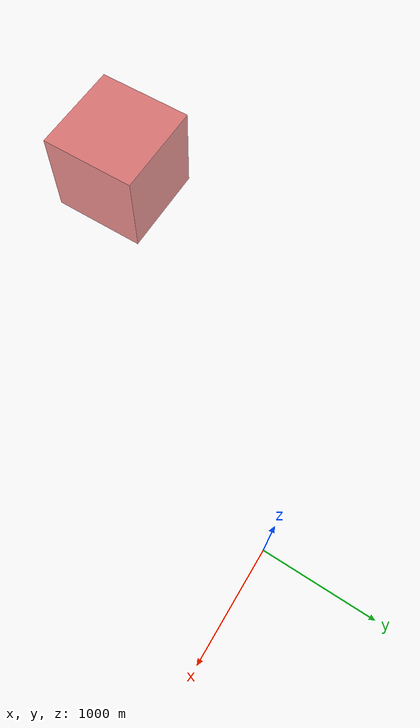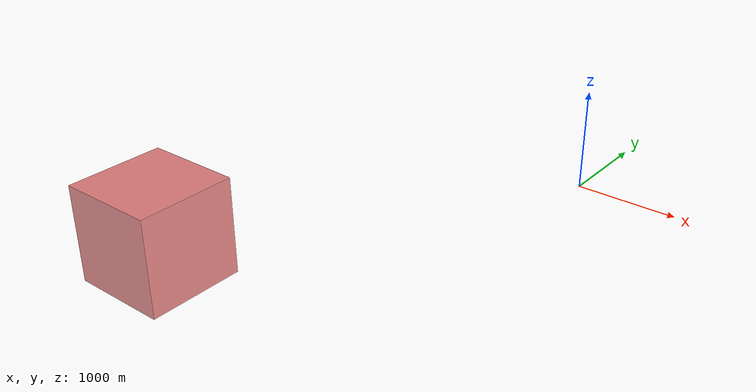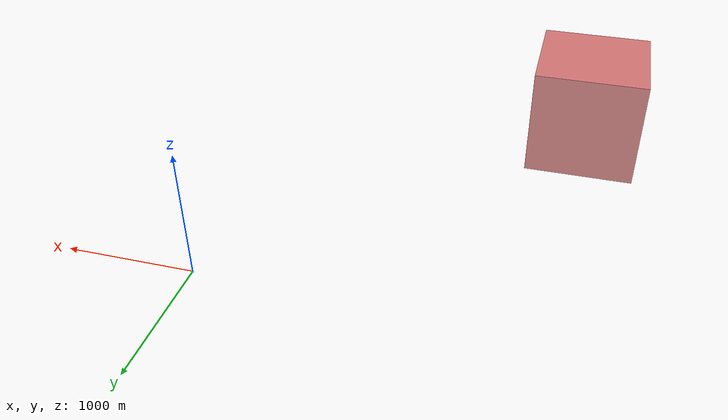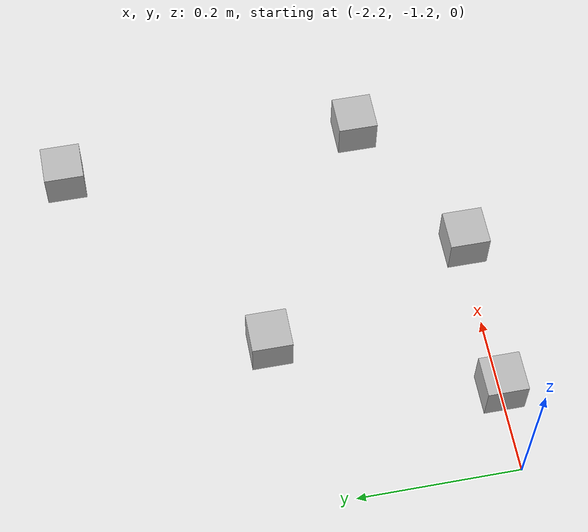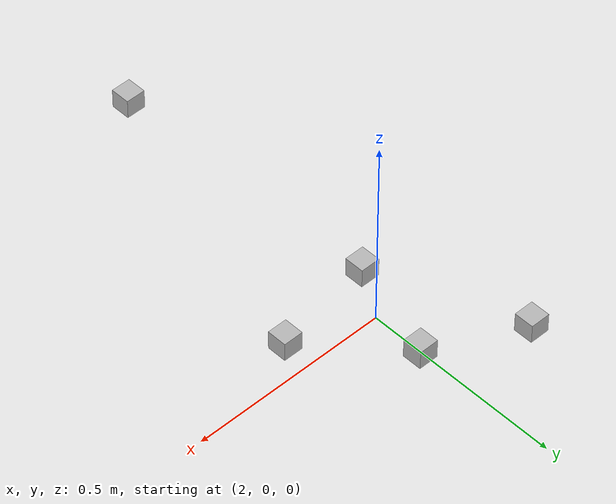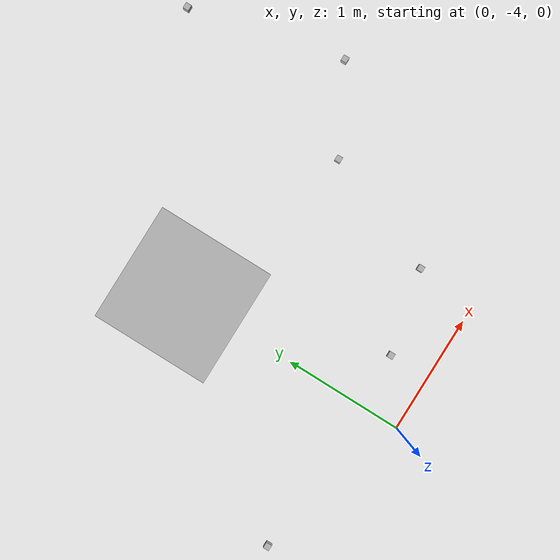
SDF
<sdf version="1.6">
 <world name="default">
  <light name="sun" type="directional">
   <pose>0 0 10 0 -0 0</pose>
   <diffuse>0.8 0.8 0.8 1</diffuse>
   <specular>0.1 0.1 0.1 1</specular>
   <attenuation>
    <range>1000</range>
    <constant>0.9</constant>
    <linear>0.01</linear>
    <quadratic>0.001</quadratic>
   </attenuation>
   <direction>-0.5 0.5 -1</direction>
  </light>
  <gravity>0 0 -9.8</gravity>
  <magnetic_field>6e-06 2.3e-05 -4.2e-05</magnetic_field>
  <atmosphere type="adiabatic"/>
  <physics name="default_physics" default="0" type="ode">
   <max_step_size>0.001</max_step_size>
   <real_time_factor>1</real_time_factor>
   <real_time_update_rate>1000</real_time_update_rate>
  </physics>
  <scene>
   <sky><clouds><speed>12</speed></clouds></sky>
   <ambient>0.4 0.4 0.4 1</ambient>
   <background>0.7 0.7 0.7 1</background>
   <shadows>1</shadows>
  </scene>
  <spherical_coordinates>
   <surface_model>EARTH_WGS84</surface_model>
   <latitude_deg>0</latitude_deg>
   <longitude_deg>0</longitude_deg>
   <elevation>0</elevation>
   <heading_deg>0</heading_deg>
  </spherical_coordinates>
  <model name="red_sky_filter">
   <link name="link_1">
    <visual name="visual1">
     <pose>-500 0 0 0 -0 1.5708</pose>
     <geometry><box><size>1000 0.1 1000</size></box></geometry>
     <material>
      <script><name>Gazebo/Red</name><uri>__default__</uri></script>
      <ambient>1 0 0 1</ambient>
      <diffuse>1 0 0 1</diffuse>
      <specular>1 0 0 1</specular>
      <emissive>1 0 0 1</emissive>
     </material>
     <transparency>0.4</transparency>
    </visual>
    <visual name="visual2">
     <pose>500 0 0 0 -0 1.5708</pose>
     <geometry><box><size>1000 0.1 1000</size></box></geometry>
     <material>
      <script><name>Gazebo/Red</name><uri>__default__</uri></script>
      <ambient>1 0 0 1</ambient>
      <diffuse>1 0 0 1</diffuse>
      <specular>1 0 0 1</specular>
      <emissive>1 0 0 1</emissive>
     </material>
     <transparency>0.4</transparency>
    </visual>
    <visual name="visual3">
     <pose>0 500 0 0 -0 0</pose>
     <geometry><box><size>1000 0.1 1000</size></box></geometry>
     <material>
      <script><name>Gazebo/Red</name><uri>__default__</uri></script>
      <ambient>1 0 0 1</ambient>
      <diffuse>1 0 0 1</diffuse>
      <specular>1 0 0 1</specular>
      <emissive>1 0 0 1</emissive>
     </material>
     <transparency>0.4</transparency>
    </visual>
    <visual name="visual4">
     <pose>0 -500 0 0 -0 0</pose>
     <geometry><box><size>1000 0.1 1000</size></box></geometry>
     <material>
      <script><name>Gazebo/Red</name><uri>__default__</uri></script>
      <ambient>1 0 0 1</ambient>
      <diffuse>1 0 0 1</diffuse>
      <specular>1 0 0 1</specular>
      <emissive>1 0 0 1</emissive>
     </material>
     <transparency>0.4</transparency>
    </visual>
    <visual name="visual5">
     <pose>0 0 500 0 -0 0</pose>
     <geometry><box><size>1000 1000 0.1</size></box></geometry>
     <material>
      <script><name>Gazebo/Red</name><uri>__default__</uri></script>
      <ambient>1 0 0 1</ambient>
      <diffuse>1 0 0 1</diffuse>
      <specular>1 0 0 1</specular>
      <emissive>1 0 0 1</emissive>
     </material>
     <transparency>0.4</transparency>
    </visual>
   </link>
   <static>1</static>
   <pose>-2602.21 -3194.55 0 0 -0 0</pose>
  </model>
  <model name="at0_51">
   <static>0</static>
   <link name="link">
    <inertial>
     <mass>0.01</mass>
     <inertia><ixx>4e-05</ixx><ixy>0</ixy><ixz>0</ixz><iyy>4e-05</iyy><iyz>0</iyz><izz>4e-05</izz></inertia>
    </inertial>
    <visual name="visual">
     <geometry><box><size>0.05 0.05 0.05</size></box></geometry>
     <material>
      <script>
       <uri>model://at0/materials/scripts</uri>
       <uri>model://at0/materials/textures</uri>
       <name>at0/Diffuse</name>
      </script>
     </material>
    </visual>
    <collision name="collision">
     <geometry><box><size>0.05 0.05 0.05</size></box></geometry>
     <surface><friction><ode><mu>0.8</mu><mu2>0.7</mu2></ode></friction></surface>
    </collision>
   </link>
   <pose>-4.16222 -5.34635 0.025 0 -0 0</pose>
  </model>
  <model name="at0_52">
   <static>0</static>
   <link name="link">
    <inertial>
     <mass>0.01</mass>
     <inertia><ixx>4e-05</ixx><ixy>0</ixy><ixz>0</ixz><iyy>4e-05</iyy><iyz>0</iyz><izz>4e-05</izz></inertia>
    </inertial>
    <visual name="visual">
     <geometry><box><size>0.05 0.05 0.05</size></box></geometry>
     <material>
      <script>
       <uri>model://at0/materials/scripts</uri>
       <uri>model://at0/materials/textures</uri>
       <name>at0/Diffuse</name>
      </script>
     </material>
    </visual>
    <collision name="collision">
     <geometry><box><size>0.05 0.05 0.05</size></box></geometry>
     <surface><friction><ode><mu>0.8</mu><mu2>0.7</mu2></ode></friction></surface>
    </collision>
   </link>
   <pose>-4.0634 -5.34856 0.025 0 -0 0</pose>
  </model>
  <model name="at0_53">
   <static>0</static>
   <link name="link">
    <inertial>
     <mass>0.01</mass>
     <inertia><ixx>4e-05</ixx><ixy>0</ixy><ixz>0</ixz><iyy>4e-05</iyy><iyz>0</iyz><izz>4e-05</izz></inertia>
    </inertial>
    <visual name="visual">
     <geometry><box><size>0.05 0.05 0.05</size></box></geometry>
     <material>
      <script>
       <uri>model://at0/materials/scripts</uri>
       <uri>model://at0/materials/textures</uri>
       <name>at0/Diffuse</name>
      </script>
     </material>
    </visual>
    <collision name="collision">
     <geometry><box><size>0.05 0.05 0.05</size></box></geometry>
     <surface><friction><ode><mu>0.8</mu><mu2>0.7</mu2></ode></friction></surface>
    </collision>
   </link>
   <pose>-4.16454 -5.45616 0.025 0 -0 0</pose>
  </model>
  <model name="at0_54">
   <static>0</static>
   <link name="link">
    <inertial>
     <mass>0.01</mass>
     <inertia><ixx>4e-05</ixx><ixy>0</ixy><ixz>0</ixz><iyy>4e-05</iyy><iyz>0</iyz><izz>4e-05</izz></inertia>
    </inertial>
    <visual name="visual">
     <geometry><box><size>0.05 0.05 0.05</size></box></geometry>
     <material>
      <script>
       <uri>model://at0/materials/scripts</uri>
       <uri>model://at0/materials/textures</uri>
       <name>at0/Diffuse</name>
      </script>
     </material>
    </visual>
    <collision name="collision">
     <geometry><box><size>0.05 0.05 0.05</size></box></geometry>
     <surface><friction><ode><mu>0.8</mu><mu2>0.7</mu2></ode></friction></surface>
    </collision>
   </link>
   <pose>-4.07058 -5.45552 0.025 0 -0 0</pose>
  </model>
  <model name="at0_66">
   <static>0</static>
   <link name="link">
    <inertial>
     <mass>0.01</mass>
     <inertia><ixx>4e-05</ixx><ixy>0</ixy><ixz>0</ixz><iyy>4e-05</iyy><iyz>0</iyz><izz>4e-05</izz></inertia>
    </inertial>
    <visual name="visual">
     <geometry><box><size>0.05 0.05 0.05</size></box></geometry>
     <material>
      <script>
       <uri>model://at0/materials/scripts</uri>
       <uri>model://at0/materials/textures</uri>
       <name>at0/Diffuse</name>
      </script>
     </material>
    </visual>
    <collision name="collision">
     <geometry><box><size>0.05 0.05 0.05</size></box></geometry>
     <surface><friction><ode><mu>0.8</mu><mu2>0.7</mu2></ode></friction></surface>
    </collision>
   </link>
   <pose>2.19747 -0.068983 0.025 0 -0 0</pose>
  </model>
  <model name="at0_67">
   <static>0</static>
   <link name="link">
    <inertial>
     <mass>0.01</mass>
     <inertia><ixx>4e-05</ixx><ixy>0</ixy><ixz>0</ixz><iyy>4e-05</iyy><iyz>0</iyz><izz>4e-05</izz></inertia>
    </inertial>
    <visual name="visual">
     <geometry><box><size>0.05 0.05 0.05</size></box></geometry>
     <material>
      <script>
       <uri>model://at0/materials/scripts</uri>
       <uri>model://at0/materials/textures</uri>
       <name>at0/Diffuse</name>
      </script>
     </material>
    </visual>
    <collision name="collision">
     <geometry><box><size>0.05 0.05 0.05</size></box></geometry>
     <surface><friction><ode><mu>0.8</mu><mu2>0.7</mu2></ode></friction></surface>
    </collision>
   </link>
   <pose>1.95407 -0.83089 0.025 0 -0 0</pose>
  </model>
  <model name="at0_68">
   <static>0</static>
   <link name="link">
    <inertial>
     <mass>0.01</mass>
     <inertia><ixx>4e-05</ixx><ixy>0</ixy><ixz>0</ixz><iyy>4e-05</iyy><iyz>0</iyz><izz>4e-05</izz></inertia>
    </inertial>
    <visual name="visual">
     <geometry><box><size>0.05 0.05 0.05</size></box></geometry>
     <material>
      <script>
       <uri>model://at0/materials/scripts</uri>
       <uri>model://at0/materials/textures</uri>
       <name>at0/Diffuse</name>
      </script>
     </material>
    </visual>
    <collision name="collision">
     <geometry><box><size>0.05 0.05 0.05</size></box></geometry>
     <surface><friction><ode><mu>0.8</mu><mu2>0.7</mu2></ode></friction></surface>
    </collision>
   </link>
   <pose>1.78831 0.249803 0.025 0 -0 0</pose>
  </model>
  <model name="at0_69">
   <static>0</static>
   <link name="link">
    <inertial>
     <mass>0.01</mass>
     <inertia><ixx>4e-05</ixx><ixy>0</ixy><ixz>0</ixz><iyy>4e-05</iyy><iyz>0</iyz><izz>4e-05</izz></inertia>
    </inertial>
    <visual name="visual">
     <geometry><box><size>0.05 0.05 0.05</size></box></geometry>
     <material>
      <script>
       <uri>model://at0/materials/scripts</uri>
       <uri>model://at0/materials/textures</uri>
       <name>at0/Diffuse</name>
      </script>
     </material>
    </visual>
    <collision name="collision">
     <geometry><box><size>0.05 0.05 0.05</size></box></geometry>
     <surface><friction><ode><mu>0.8</mu><mu2>0.7</mu2></ode></friction></surface>
    </collision>
   </link>
   <pose>1.93499 -0.108598 0.025 0 -0 0</pose>
  </model>
  <model name="at0_70">
   <static>0</static>
   <link name="link">
    <inertial>
     <mass>0.01</mass>
     <inertia><ixx>4e-05</ixx><ixy>0</ixy><ixz>0</ixz><iyy>4e-05</iyy><iyz>0</iyz><izz>4e-05</izz></inertia>
    </inertial>
    <visual name="visual">
     <geometry><box><size>0.05 0.05 0.05</size></box></geometry>
     <material>
      <script>
       <uri>model://at0/materials/scripts</uri>
       <uri>model://at0/materials/textures</uri>
       <name>at0/Diffuse</name>
      </script>
     </material>
    </visual>
    <collision name="collision">
     <geometry><box><size>0.05 0.05 0.05</size></box></geometry>
     <surface><friction><ode><mu>0.8</mu><mu2>0.7</mu2></ode></friction></surface>
    </collision>
   </link>
   <pose>2.00894 0.141349 0.025 0 -0 0</pose>
  </model>
  <model name="collection_disk">
   <static>1</static>
   <link name="link">
    <visual name="visual">
     <geometry><box><size>1.016 1.016 0.001</size></box></geometry>
     <material>
      <script>
       <uri>model://collection_disk/materials/scripts</uri>
       <uri>model://collection_disk/materials/textures</uri>
       <name>collection_disk/Diffuse</name>
      </script>
     </material>
    </visual>
   </link>
   <plugin name="score_sim" filename="libgazebo_plugins_score.so">
    <scoreTopic>/collectionZone/score</scoreTopic>
    <collectionZoneSquareSize>1.016</collectionZoneSquareSize>
    <updateRate>0.2</updateRate>
   </plugin>
   <pose>0 3 0 0 -0 0</pose>
  </model>
  <model name="collection_disk_0">
   <static>1</static>
   <link name="link">
    <visual name="visual">
     <geometry><box><size>1.016 1.016 0.001</size></box></geometry>
     <material>
      <script>
       <uri>model://collection_disk/materials/scripts</uri>
       <uri>model://collection_disk/materials/textures</uri>
       <name>collection_disk/Diffuse</name>
      </script>
     </material>
    </visual>
   </link>
   <plugin name="score_sim" filename="libgazebo_plugins_score.so">
    <scoreTopic>/collectionZone/score</scoreTopic>
    <collectionZoneSquareSize>1.016</collectionZoneSquareSize>
    <updateRate>0.2</updateRate>
   </plugin>
   <pose>0 -2 0 0 -0 0</pose>
  </model>
  <model name="at1_0">
   <static>0</static>
   <link name="link">
    <inertial>
     <mass>0.01</mass>
     <inertia><ixx>4e-05</ixx><ixy>0</ixy><ixz>0</ixz><iyy>4e-05</iyy><iyz>0</iyz><izz>4e-05</izz></inertia>
    </inertial>
    <visual name="visual">
     <geometry><box><size>0.05 0.05 0.05</size></box></geometry>
     <material>
      <script>
       <uri>model://at1/materials/scripts</uri>
       <uri>model://at1/materials/textures</uri>
       <name>at1/Diffuse</name>
      </script>
     </material>
    </visual>
    <collision name="collision">
     <geometry><box><size>0.05 0.05 0.05</size></box></geometry>
     <surface><friction><ode><mu>0.8</mu><mu2>0.7</mu2></ode></friction></surface>
    </collision>
   </link>
   <pose>-1.32628 -3.61978 0.025 0 -0 0</pose>
  </model>
  <model name="at1_2">
   <static>0</static>
   <link name="link">
    <inertial>
     <mass>0.01</mass>
     <inertia><ixx>4e-05</ixx><ixy>0</ixy><ixz>0</ixz><iyy>4e-05</iyy><iyz>0</iyz><izz>4e-05</izz></inertia>
    </inertial>
    <visual name="visual">
     <geometry><box><size>0.05 0.05 0.05</size></box></geometry>
     <material>
      <script>
       <uri>model://at1/materials/scripts</uri>
       <uri>model://at1/materials/textures</uri>
       <name>at1/Diffuse</name>
      </script>
     </material>
    </visual>
    <collision name="collision">
     <geometry><box><size>0.05 0.05 0.05</size></box></geometry>
     <surface><friction><ode><mu>0.8</mu><mu2>0.7</mu2></ode></friction></surface>
    </collision>
   </link>
   <pose>1.17562 -3.48714 0.025 0 -0 0</pose>
  </model>
  <model name="at1_3">
   <static>0</static>
   <link name="link">
    <inertial>
     <mass>0.01</mass>
     <inertia><ixx>4e-05</ixx><ixy>0</ixy><ixz>0</ixz><iyy>4e-05</iyy><iyz>0</iyz><izz>4e-05</izz></inertia>
    </inertial>
    <visual name="visual">
     <geometry><box><size>0.05 0.05 0.05</size></box></geometry>
     <material>
      <script>
       <uri>model://at1/materials/scripts</uri>
       <uri>model://at1/materials/textures</uri>
       <name>at1/Diffuse</name>
      </script>
     </material>
    </visual>
    <collision name="collision">
     <geometry><box><size>0.05 0.05 0.05</size></box></geometry>
     <surface><friction><ode><mu>0.8</mu><mu2>0.7</mu2></ode></friction></surface>
    </collision>
   </link>
   <pose>0.46882 -3.65096 0.025 0 -0 0</pose>
  </model>
  <model name="at1_5">
   <static>0</static>
   <link name="link">
    <inertial>
     <mass>0.01</mass>
     <inertia><ixx>4e-05</ixx><ixy>0</ixy><ixz>0</ixz><iyy>4e-05</iyy><iyz>0</iyz><izz>4e-05</izz></inertia>
    </inertial>
    <visual name="visual">
     <geometry><box><size>0.05 0.05 0.05</size></box></geometry>
     <material>
      <script>
       <uri>model://at1/materials/scripts</uri>
       <uri>model://at1/materials/textures</uri>
       <name>at1/Diffuse</name>
      </script>
     </material>
    </visual>
    <collision name="collision">
     <geometry><box><size>0.05 0.05 0.05</size></box></geometry>
     <surface><friction><ode><mu>0.8</mu><mu2>0.7</mu2></ode></friction></surface>
    </collision>
   </link>
   <pose>1.56574 -2.48026 0.025 0 -0 0</pose>
  </model>
  <model name="at1_6">
   <static>0</static>
   <link name="link">
    <inertial>
     <mass>0.01</mass>
     <inertia><ixx>4e-05</ixx><ixy>0</ixy><ixz>0</ixz><iyy>4e-05</iyy><iyz>0</iyz><izz>4e-05</izz></inertia>
    </inertial>
    <visual name="visual">
     <geometry><box><size>0.05 0.05 0.05</size></box></geometry>
     <material>
      <script>
       <uri>model://at1/materials/scripts</uri>
       <uri>model://at1/materials/textures</uri>
       <name>at1/Diffuse</name>
      </script>
     </material>
    </visual>
    <collision name="collision">
     <geometry><box><size>0.05 0.05 0.05</size></box></geometry>
     <surface><friction><ode><mu>0.8</mu><mu2>0.7</mu2></ode></friction></surface>
    </collision>
   </link>
   <pose>2.26119 -2.10657 0.025 0 -0 0</pose>
  </model>
  <model name="at1_9">
   <static>0</static>
   <link name="link">
    <inertial>
     <mass>0.01</mass>
     <inertia><ixx>4e-05</ixx><ixy>0</ixy><ixz>0</ixz><iyy>4e-05</iyy><iyz>0</iyz><izz>4e-05</izz></inertia>
    </inertial>
    <visual name="visual">
     <geometry><box><size>0.05 0.05 0.05</size></box></geometry>
     <material>
      <script>
       <uri>model://at1/materials/scripts</uri>
       <uri>model://at1/materials/textures</uri>
       <name>at1/Diffuse</name>
      </script>
     </material>
    </visual>
    <collision name="collision">
     <geometry><box><size>0.05 0.05 0.05</size></box></geometry>
     <surface><friction><ode><mu>0.8</mu><mu2>0.7</mu2></ode></friction></surface>
    </collision>
   </link>
   <pose>-1.98736 -0.935181 0.025 0 -0 0</pose>
  </model>
  <model name="at1_10">
   <static>0</static>
   <link name="link">
    <inertial>
     <mass>0.01</mass>
     <inertia><ixx>4e-05</ixx><ixy>0</ixy><ixz>0</ixz><iyy>4e-05</iyy><iyz>0</iyz><izz>4e-05</izz></inertia>
    </inertial>
    <visual name="visual">
     <geometry><box><size>0.05 0.05 0.05</size></box></geometry>
     <material>
      <script>
       <uri>model://at1/materials/scripts</uri>
       <uri>model://at1/materials/textures</uri>
       <name>at1/Diffuse</name>
      </script>
     </material>
    </visual>
    <collision name="collision">
     <geometry><box><size>0.05 0.05 0.05</size></box></geometry>
     <surface><friction><ode><mu>0.8</mu><mu2>0.7</mu2></ode></friction></surface>
    </collision>
   </link>
   <pose>-1.89112 -1.20265 0.025 0 -0 0</pose>
  </model>
  <model name="at1_11">
   <static>0</static>
   <link name="link">
    <inertial>
     <mass>0.01</mass>
     <inertia><ixx>4e-05</ixx><ixy>0</ixy><ixz>0</ixz><iyy>4e-05</iyy><iyz>0</iyz><izz>4e-05</izz></inertia>
    </inertial>
    <visual name="visual">
     <geometry><box><size>0.05 0.05 0.05</size></box></geometry>
     <material>
      <script>
       <uri>model://at1/materials/scripts</uri>
       <uri>model://at1/materials/textures</uri>
       <name>at1/Diffuse</name>
      </script>
     </material>
    </visual>
    <collision name="collision">
     <geometry><box><size>0.05 0.05 0.05</size></box></geometry>
     <surface><friction><ode><mu>0.8</mu><mu2>0.7</mu2></ode></friction></surface>
    </collision>
   </link>
   <pose>-1.69614 -1.10156 0.025 0 -0 0</pose>
  </model>
  <model name="at1_12">
   <static>0</static>
   <link name="link">
    <inertial>
     <mass>0.01</mass>
     <inertia><ixx>4e-05</ixx><ixy>0</ixy><ixz>0</ixz><iyy>4e-05</iyy><iyz>0</iyz><izz>4e-05</izz></inertia>
    </inertial>
    <visual name="visual">
     <geometry><box><size>0.05 0.05 0.05</size></box></geometry>
     <material>
      <script>
       <uri>model://at1/materials/scripts</uri>
       <uri>model://at1/materials/textures</uri>
       <name>at1/Diffuse</name>
      </script>
     </material>
    </visual>
    <collision name="collision">
     <geometry><box><size>0.05 0.05 0.05</size></box></geometry>
     <surface><friction><ode><mu>0.8</mu><mu2>0.7</mu2></ode></friction></surface>
    </collision>
   </link>
   <pose>-2.09585 -1.19848 0.025 0 -0 0</pose>
  </model>
  <model name="at1_13">
   <static>0</static>
   <link name="link">
    <inertial>
     <mass>0.01</mass>
     <inertia><ixx>4e-05</ixx><ixy>0</ixy><ixz>0</ixz><iyy>4e-05</iyy><iyz>0</iyz><izz>4e-05</izz></inertia>
    </inertial>
    <visual name="visual">
     <geometry><box><size>0.05 0.05 0.05</size></box></geometry>
     <material>
      <script>
       <uri>model://at1/materials/scripts</uri>
       <uri>model://at1/materials/textures</uri>
       <name>at1/Diffuse</name>
      </script>
     </material>
    </visual>
    <collision name="collision">
     <geometry><box><size>0.05 0.05 0.05</size></box></geometry>
     <surface><friction><ode><mu>0.8</mu><mu2>0.7</mu2></ode></friction></surface>
    </collision>
   </link>
   <pose>-1.7032 -0.718798 0.025 0 -0 0</pose>
  </model>
  <model name="mission_to_mars_ground_plane_0">
   <static>1</static>
   <link name="link">
    <collision name="collision">
     <geometry><plane><normal>0 0 1</normal><size>20 20</size></plane></geometry>
     <surface><friction><ode><mu>100</mu><mu2>50</mu2></ode></friction></surface>
    </collision>
    <visual name="visual">
     <cast_shadows>0</cast_shadows>
     <geometry><plane><normal>0 0 1</normal><size>20 20</size></plane></geometry>
     <material>
      <script>
       <uri>model://media/materials/scripts</uri>
       <uri>model://media/materials/textures</uri>
       <name>MissionToMarsGround/Image</name>
      </script>
     </material>
    </visual>
   </link>
   <pose>-0.014064 -0.053068 0 0 -0 0</pose>
  </model>
  <model name="swarm_rock">
   <pose>2.9003 8.03828 -0.195688 3.14155 0.001592 1.54453</pose>
   <static>1</static>
   <link name="link">
    <collision name="collision">
     <geometry><mesh><uri>model://swarm_rock/meshes/swarm_rock.dae</uri><scale>1 1 1</scale></mesh></geometry>
    </collision>
    <visual name="visual">
     <geometry><mesh><uri>model://swarm_rock/meshes/swarm_rock.dae</uri><scale>1 1 1</scale></mesh></geometry>
    </visual>
   </link>
  </model>
  <model name="swarm_rock_0">
   <pose>3.3848 7.42046 -0.792328 3.14056 0.001213 0.865907</pose>
   <static>1</static>
   <link name="link">
    <collision name="collision">
     <geometry><mesh><uri>model://swarm_rock/meshes/swarm_rock.dae</uri><scale>1 1 1</scale></mesh></geometry>
    </collision>
    <visual name="visual">
     <geometry><mesh><uri>model://swarm_rock/meshes/swarm_rock.dae</uri><scale>1 1 1</scale></mesh></geometry>
    </visual>
   </link>
  </model>
  <model name="swarm_rock_1">
   <pose>5.82878 6.02298 -0.412309 3.1405 0.001156 0.811984</pose>
   <static>1</static>
   <link name="link">
    <collision name="collision">
     <geometry><mesh><uri>model://swarm_rock/meshes/swarm_rock.dae</uri><scale>1 1 1</scale></mesh></geometry>
    </collision>
    <visual name="visual">
     <geometry><mesh><uri>model://swarm_rock/meshes/swarm_rock.dae</uri><scale>1 1 1</scale></mesh></geometry>
    </visual>
   </link>
  </model>
  <model name="swarm_rock_2">
   <pose>7.92801 6.14651 0 3.14 -0 0</pose>
   <static>1</static>
   <link name="link">
    <collision name="collision">
     <geometry><mesh><uri>model://swarm_rock/meshes/swarm_rock.dae</uri><scale>1 1 1</scale></mesh></geometry>
    </collision>
    <visual name="visual">
     <geometry><mesh><uri>model://swarm_rock/meshes/swarm_rock.dae</uri><scale>1 1 1</scale></mesh></geometry>
    </visual>
   </link>
  </model>
  <model name="swarm_rock_3">
   <pose>4.64286 8.05527 -0.429706 3.14148 0.001589 1.5014</pose>
   <static>1</static>
   <link name="link">
    <collision name="collision">
     <geometry><mesh><uri>model://swarm_rock/meshes/swarm_rock.dae</uri><scale>1 1 1</scale></mesh></geometry>
    </collision>
    <visual name="visual">
     <geometry><mesh><uri>model://swarm_rock/meshes/swarm_rock.dae</uri><scale>1 1 1</scale></mesh></geometry>
    </visual>
   </link>
  </model>
  <model name="swarm_rock_4">
   <pose>6.83655 6.63858 0.001149 3.14 -0 0</pose>
   <static>1</static>
   <link name="link">
    <collision name="collision">
     <geometry><mesh><uri>model://swarm_rock/meshes/swarm_rock.dae</uri><scale>1 1 1</scale></mesh></geometry>
    </collision>
    <visual name="visual">
     <geometry><mesh><uri>model://swarm_rock/meshes/swarm_rock.dae</uri><scale>1 1 1</scale></mesh></geometry>
    </visual>
   </link>
  </model>
 </world>
</sdf>
